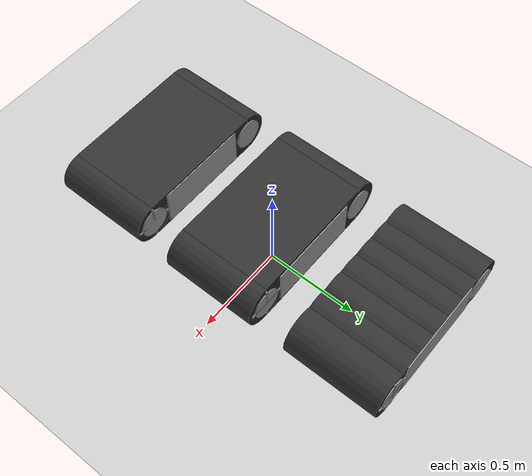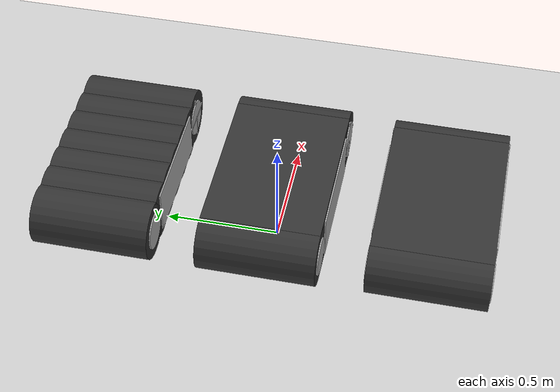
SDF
<sdf version="1.6">
 <world name="default">
  <include><uri>model://ground_plane</uri></include>
  <include><uri>model://sun</uri></include>
  <include><uri>model://example_track</uri><pose>0 -0.7 0.3 0 0 0</pose></include>
  <include><uri>model://example_track_simple</uri><pose>0 0 0.3 0 0 0</pose></include>
  <include><uri>model://example_track_simple_wheels</uri><pose>0 0.7 0.3 0 0 0</pose></include>
 </world>
</sdf>
